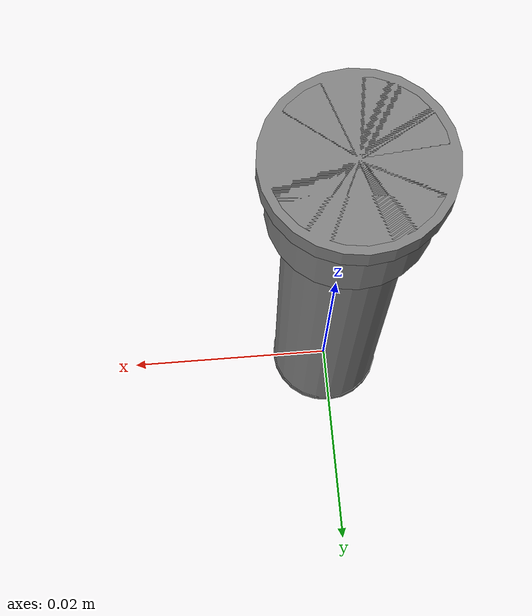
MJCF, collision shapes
<?xml version="1.0" encoding="utf-8"?>
<mujoco model="centrifuge_1-5ml_screw">
  <compiler angle="radian" meshdir="../../assets" />

  <option integrator="implicitfast" impratio="1" cone="elliptic" noslip_iterations="2" />

  <asset>
    <mesh name="centrifuge_1-5ml_screw_body-visual" file="container/centrifuge_1-5ml_screw_vis/centrifuge_1-5ml_screw_body.STL" scale="0.001 0.001 0.001"/>
    <mesh name="centrifuge_1-5ml_screw_cap-visual" file="container/centrifuge_1-5ml_screw_vis/centrifuge_1-5ml_screw_cap.STL" scale="0.001 0.001 0.001"/>
  </asset>

  <visual>
        <global azimuth="220" elevation="0"/>
  </visual>

  <worldbody>
    <body name="centrifuge_1-5ml_screw_body">
      <geom type="mesh" group="2" density="0" contype="0" conaffinity="0" mesh="centrifuge_1-5ml_screw_body-visual" rgba="1 1 1 0.2" />
      <geom type="cylinder" size="0.00535 0.0002950000000000001" pos="0 0 0.0002950000000000001" group="3" />
      <geom name="body_cyl" type="cylinder" size="0.00525 0.02129728" pos="0 0 0.02129728" group="3" />
    </body>

    <body name="centrifuge_1-5ml_screw_cap" pos="0 0 0.04455" euler="3.1415926535 0 0">
      <geom type="mesh" group="2" density="0" contype="0" conaffinity="0" mesh="centrifuge_1-5ml_screw_cap-visual" rgba="0.9294 0.2706 0.0627 1" />
      <geom type="cylinder" size="0.0075 0.001" pos="0 0 0.001" group="3" />
      <geom name="cap_cyl" type="cylinder" size="0.0068 0.00428" pos="0 0 0.00428" group="3" />
    </body>

  </worldbody>
</mujoco>
